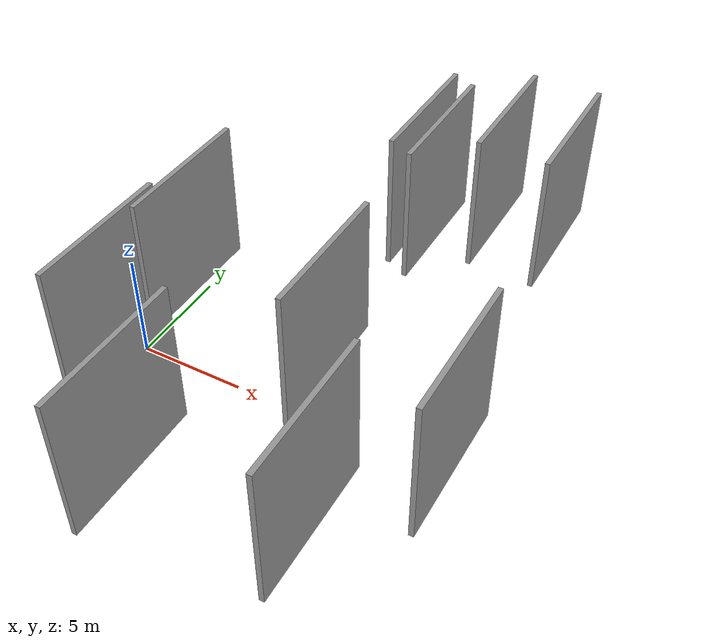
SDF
<sdf version="1.6">
 <world name="default">
  <scene>
   <sky><clouds><speed>12</speed></clouds></sky>
   <ambient>0.4 0.4 0.4 1</ambient>
   <background>0.7 0.7 0.7 1</background>
   <shadows>1</shadows>
  </scene>
  <gravity>0 0 -9.8066</gravity>
  <magnetic_field>6e-06 2.3e-05 -4.2e-05</magnetic_field>
  <physics default="0" name="default_physics" type="ode">
   <ode>
    <solver>
     <type>quick</type>
     <iters>10</iters>
     <sor>1.0</sor>
     <use_dynamic_moi_rescaling>0</use_dynamic_moi_rescaling>
    </solver>
    <constraints>
     <cfm>0</cfm>
     <erp>0.2</erp>
     <contact_max_correcting_vel>100</contact_max_correcting_vel>
     <contact_surface_layer>0.001</contact_surface_layer>
    </constraints>
   </ode>
   <max_step_size>0.004</max_step_size>
   <real_time_factor>1</real_time_factor>
   <real_time_update_rate>250</real_time_update_rate>
  </physics>
  <light name="sun" type="directional">
   <pose>0 0 10 0 0 0</pose>
   <diffuse>0.8 0.8 0.8 1</diffuse>
   <specular>0.2 0.2 0.2 1</specular>
   <attenuation>
    <range>1000</range>
    <constant>0.9</constant>
    <linear>0.01</linear>
    <quadratic>0.001</quadratic>
   </attenuation>
   <direction>-0.5 0.1 -0.9</direction>
  </light>
  <model name="grey_wall_1">
   <static>1</static>
   <pose>9.4207 8.3993 5.0 0.000000 0.000000 1.570796</pose>
   <link name="link">
    <pose>0 0 3.00 0 0 0</pose>
    <collision name="collision"><geometry><box><size>6.00 0.2 6.00</size></box></geometry></collision>
    <visual name="visual">
     <cast_shadows>0</cast_shadows>
     <geometry><box><size>6.00 0.2 6.00</size></box></geometry>
     <material>
      <script>
       <uri>model://grey_wall/materials/scripts</uri>
       <uri>model://grey_wall/materials/textures</uri>
       <name>vrc/grey_wall</name>
      </script>
     </material>
    </visual>
   </link>
  </model>
  <model name="grey_wall_2">
   <static>1</static>
   <pose>10.4977 -1.5816 5.0 0.000000 0.000000 1.570796</pose>
   <link name="link">
    <pose>0 0 3.00 0 0 0</pose>
    <collision name="collision"><geometry><box><size>6.00 0.2 6.00</size></box></geometry></collision>
    <visual name="visual">
     <cast_shadows>0</cast_shadows>
     <geometry><box><size>6.00 0.2 6.00</size></box></geometry>
     <material>
      <script>
       <uri>model://grey_wall/materials/scripts</uri>
       <uri>model://grey_wall/materials/textures</uri>
       <name>vrc/grey_wall</name>
      </script>
     </material>
    </visual>
   </link>
  </model>
  <model name="grey_wall_3">
   <static>1</static>
   <pose>3.3421 0.1046 5.0 0.000000 0.000000 1.570796</pose>
   <link name="link">
    <pose>0 0 3.00 0 0 0</pose>
    <collision name="collision"><geometry><box><size>6.00 0.2 6.00</size></box></geometry></collision>
    <visual name="visual">
     <cast_shadows>0</cast_shadows>
     <geometry><box><size>6.00 0.2 6.00</size></box></geometry>
     <material>
      <script>
       <uri>model://grey_wall/materials/scripts</uri>
       <uri>model://grey_wall/materials/textures</uri>
       <name>vrc/grey_wall</name>
      </script>
     </material>
    </visual>
   </link>
  </model>
  <model name="grey_wall_4">
   <static>1</static>
   <pose>15.2708 9.7980 5.0 0.000000 0.000000 1.570796</pose>
   <link name="link">
    <pose>0 0 3.00 0 0 0</pose>
    <collision name="collision"><geometry><box><size>6.00 0.2 6.00</size></box></geometry></collision>
    <visual name="visual">
     <cast_shadows>0</cast_shadows>
     <geometry><box><size>6.00 0.2 6.00</size></box></geometry>
     <material>
      <script>
       <uri>model://grey_wall/materials/scripts</uri>
       <uri>model://grey_wall/materials/textures</uri>
       <name>vrc/grey_wall</name>
      </script>
     </material>
    </visual>
   </link>
  </model>
  <model name="grey_wall_5">
   <static>1</static>
   <pose>6.9928 -8.8151 5.0 0.000000 0.000000 1.570796</pose>
   <link name="link">
    <pose>0 0 3.00 0 0 0</pose>
    <collision name="collision"><geometry><box><size>6.00 0.2 6.00</size></box></geometry></collision>
    <visual name="visual">
     <cast_shadows>0</cast_shadows>
     <geometry><box><size>6.00 0.2 6.00</size></box></geometry>
     <material>
      <script>
       <uri>model://grey_wall/materials/scripts</uri>
       <uri>model://grey_wall/materials/textures</uri>
       <name>vrc/grey_wall</name>
      </script>
     </material>
    </visual>
   </link>
  </model>
  <model name="grey_wall_6">
   <static>1</static>
   <pose>3.0019 -4.3689 5.0 0.000000 0.000000 1.570796</pose>
   <link name="link">
    <pose>0 0 3.00 0 0 0</pose>
    <collision name="collision"><geometry><box><size>6.00 0.2 6.00</size></box></geometry></collision>
    <visual name="visual">
     <cast_shadows>0</cast_shadows>
     <geometry><box><size>6.00 0.2 6.00</size></box></geometry>
     <material>
      <script>
       <uri>model://grey_wall/materials/scripts</uri>
       <uri>model://grey_wall/materials/textures</uri>
       <name>vrc/grey_wall</name>
      </script>
     </material>
    </visual>
   </link>
  </model>
  <model name="grey_wall_7">
   <static>1</static>
   <pose>10.4215 7.9002 5.0 0.000000 0.000000 1.570796</pose>
   <link name="link">
    <pose>0 0 3.00 0 0 0</pose>
    <collision name="collision"><geometry><box><size>6.00 0.2 6.00</size></box></geometry></collision>
    <visual name="visual">
     <cast_shadows>0</cast_shadows>
     <geometry><box><size>6.00 0.2 6.00</size></box></geometry>
     <material>
      <script>
       <uri>model://grey_wall/materials/scripts</uri>
       <uri>model://grey_wall/materials/textures</uri>
       <name>vrc/grey_wall</name>
      </script>
     </material>
    </visual>
   </link>
  </model>
  <model name="grey_wall_8">
   <static>1</static>
   <pose>12.4302 9.9123 5.0 0.000000 0.000000 1.570796</pose>
   <link name="link">
    <pose>0 0 3.00 0 0 0</pose>
    <collision name="collision"><geometry><box><size>6.00 0.2 6.00</size></box></geometry></collision>
    <visual name="visual">
     <cast_shadows>0</cast_shadows>
     <geometry><box><size>6.00 0.2 6.00</size></box></geometry>
     <material>
      <script>
       <uri>model://grey_wall/materials/scripts</uri>
       <uri>model://grey_wall/materials/textures</uri>
       <name>vrc/grey_wall</name>
      </script>
     </material>
    </visual>
   </link>
  </model>
  <model name="grey_wall_9">
   <static>1</static>
   <pose>13.5860 -7.9557 5.0 0.000000 0.000000 1.570796</pose>
   <link name="link">
    <pose>0 0 3.00 0 0 0</pose>
    <collision name="collision"><geometry><box><size>6.00 0.2 6.00</size></box></geometry></collision>
    <visual name="visual">
     <cast_shadows>0</cast_shadows>
     <geometry><box><size>6.00 0.2 6.00</size></box></geometry>
     <material>
      <script>
       <uri>model://grey_wall/materials/scripts</uri>
       <uri>model://grey_wall/materials/textures</uri>
       <name>vrc/grey_wall</name>
      </script>
     </material>
    </visual>
   </link>
  </model>
  <model name="grey_wall_10">
   <static>1</static>
   <pose>16.4962 -3.6416 5.0 0.000000 0.000000 1.570796</pose>
   <link name="link">
    <pose>0 0 3.00 0 0 0</pose>
    <collision name="collision"><geometry><box><size>6.00 0.2 6.00</size></box></geometry></collision>
    <visual name="visual">
     <cast_shadows>0</cast_shadows>
     <geometry><box><size>6.00 0.2 6.00</size></box></geometry>
     <material>
      <script>
       <uri>model://grey_wall/materials/scripts</uri>
       <uri>model://grey_wall/materials/textures</uri>
       <name>vrc/grey_wall</name>
      </script>
     </material>
    </visual>
   </link>
  </model>
 </world>
</sdf>
